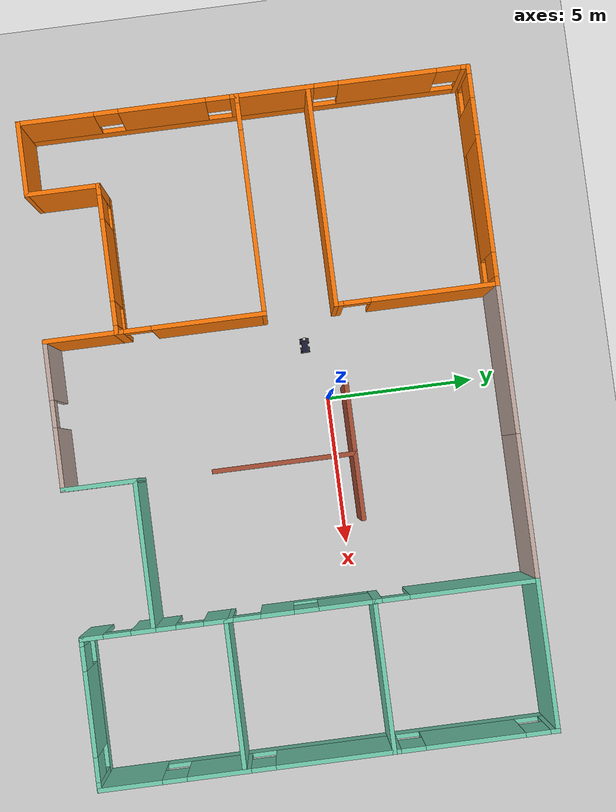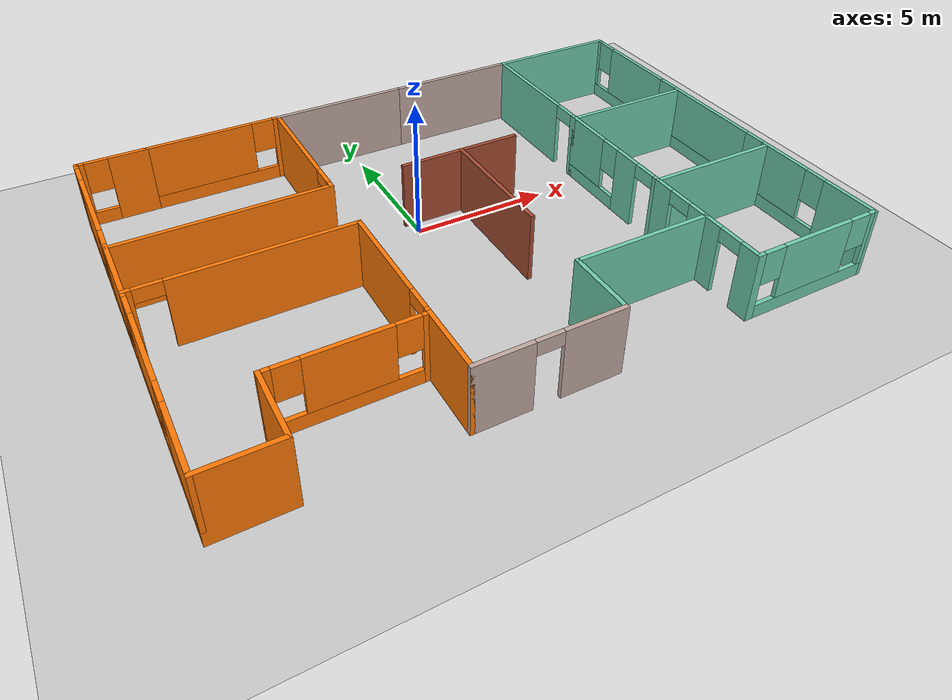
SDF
<sdf version="1.7">
 <world name="default">
  <plugin name="welcome_message" filename="libwelcome_message.so"/>
  <light name="sun" type="directional">
   <pose>0 0 10 0 -0 0</pose>
   <diffuse>0.8 0.8 0.8 1</diffuse>
   <specular>0.2 0.2 0.2 1</specular>
   <attenuation>
    <range>1000</range>
    <constant>0.9</constant>
    <linear>0.01</linear>
    <quadratic>0.001</quadratic>
   </attenuation>
   <direction>-0.5 0.1 -0.9</direction>
   <spot><inner_angle>0</inner_angle><outer_angle>0</outer_angle><falloff>0</falloff></spot>
  </light>
  <model name="ground_plane">
   <static>1</static>
   <link name="link">
    <collision name="collision">
     <geometry><plane><normal>0 0 1</normal><size>100 100</size></plane></geometry>
     <surface>
      <contact><collide_bitmask>65535</collide_bitmask></contact>
      <friction><ode><mu>100</mu><mu2>50</mu2></ode></friction>
     </surface>
    </collision>
    <visual name="visual">
     <cast_shadows>0</cast_shadows>
     <geometry><plane><normal>0 0 1</normal><size>100 100</size></plane></geometry>
     <material>
      <script><uri>file://media/materials/scripts/gazebo.material</uri><name>Gazebo/Grey</name></script>
     </material>
    </visual>
   </link>
  </model>
  <gravity>0 0 -9.8</gravity>
  <magnetic_field>6e-06 2.3e-05 -4.2e-05</magnetic_field>
  <atmosphere type="adiabatic"/>
  <physics type="ode">
   <max_step_size>0.001</max_step_size>
   <real_time_factor>1</real_time_factor>
   <real_time_update_rate>1000</real_time_update_rate>
  </physics>
  <scene><ambient>0.4 0.4 0.4 1</ambient><background>0.7 0.7 0.7 1</background><shadows>1</shadows></scene>
  <spherical_coordinates>
   <surface_model>EARTH_WGS84</surface_model>
   <latitude_deg>0</latitude_deg>
   <longitude_deg>0</longitude_deg>
   <elevation>0</elevation>
   <heading_deg>0</heading_deg>
  </spherical_coordinates>
  <model name="World_1">
   <pose>0.807482 -1.56005 0 0 -0 0</pose>
   <link name="Wall_10">
    <pose>6.025 -3.9 0 0 -0 1.5708</pose>
    <visual name="Wall_10_Visual_0">
     <pose>-0.849577 0 1.25 0 -0 0</pose>
     <geometry><box><size>0.800846 0.15 2.5</size></box></geometry>
     <material>
      <script><uri>file://media/materials/scripts/gazebo.material</uri><name>Gazebo/Grey</name></script>
      <ambient>0.435294 0.796078 0.67451 1</ambient>
     </material>
     <meta><layer>0</layer></meta>
    </visual>
    <collision name="Wall_10_Collision_0">
     <geometry><box><size>0.800846 0.15 2.5</size></box></geometry>
     <pose>-0.849577 0 1.25 0 -0 0</pose>
    </collision>
    <visual name="Wall_10_Visual_1">
     <pose>0.850423 0 1.25 0 -0 0</pose>
     <geometry><box><size>0.799154 0.15 2.5</size></box></geometry>
     <material>
      <script><uri>file://media/materials/scripts/gazebo.material</uri><name>Gazebo/Grey</name></script>
      <ambient>0.435294 0.796078 0.67451 1</ambient>
     </material>
     <meta><layer>0</layer></meta>
    </visual>
    <collision name="Wall_10_Collision_1">
     <geometry><box><size>0.799154 0.15 2.5</size></box></geometry>
     <pose>0.850423 0 1.25 0 -0 0</pose>
    </collision>
    <visual name="Wall_10_Visual_2">
     <pose>0.000846 0 2.25 0 -0 0</pose>
     <geometry><box><size>0.9 0.15 0.5</size></box></geometry>
     <material>
      <script><uri>file://media/materials/scripts/gazebo.material</uri><name>Gazebo/Grey</name></script>
      <ambient>0.435294 0.796078 0.67451 1</ambient>
     </material>
     <meta><layer>0</layer></meta>
    </visual>
    <collision name="Wall_10_Collision_2">
     <geometry><box><size>0.9 0.15 0.5</size></box></geometry>
     <pose>0.000846 0 2.25 0 -0 0</pose>
    </collision>
   </link>
   <link name="Wall_11">
    <collision name="Wall_11_Collision">
     <geometry><box><size>5 0.15 2.5</size></box></geometry>
     <pose>0 0 1.25 0 -0 0</pose>
    </collision>
    <visual name="Wall_11_Visual">
     <pose>0 0 1.25 0 -0 0</pose>
     <geometry><box><size>5 0.15 2.5</size></box></geometry>
     <material>
      <script><uri>file://media/materials/scripts/gazebo.material</uri><name>Gazebo/Grey</name></script>
      <ambient>0.435294 0.796078 0.67451 1</ambient>
     </material>
     <meta><layer>0</layer></meta>
    </visual>
    <pose>8.45 -2.725 0 0 -0 0</pose>
   </link>
   <link name="Wall_13">
    <pose>6.025 -0.3 0 0 -0 1.5708</pose>
    <visual name="Wall_13_Visual_0">
     <pose>-2.34458 0 1.25 0 -0 0</pose>
     <geometry><box><size>0.310846 0.15 2.5</size></box></geometry>
     <material>
      <script><uri>file://media/materials/scripts/gazebo.material</uri><name>Gazebo/Grey</name></script>
      <ambient>0.435294 0.796078 0.67451 1</ambient>
     </material>
     <meta><layer>0</layer></meta>
    </visual>
    <collision name="Wall_13_Collision_0">
     <geometry><box><size>0.310846 0.15 2.5</size></box></geometry>
     <pose>-2.34458 0 1.25 0 -0 0</pose>
    </collision>
    <visual name="Wall_13_Visual_1">
     <pose>-0.744154 0 1.25 0 -0 0</pose>
     <geometry><box><size>1.09 0.15 2.5</size></box></geometry>
     <material>
      <script><uri>file://media/materials/scripts/gazebo.material</uri><name>Gazebo/Grey</name></script>
      <ambient>0.435294 0.796078 0.67451 1</ambient>
     </material>
     <meta><layer>0</layer></meta>
    </visual>
    <collision name="Wall_13_Collision_1">
     <geometry><box><size>1.09 0.15 2.5</size></box></geometry>
     <pose>-0.744154 0 1.25 0 -0 0</pose>
    </collision>
    <visual name="Wall_13_Visual_2">
     <pose>1.15042 0 0.25 0 -0 0</pose>
     <geometry><box><size>2.69915 0.15 0.5</size></box></geometry>
     <material>
      <script><uri>file://media/materials/scripts/gazebo.material</uri><name>Gazebo/Grey</name></script>
      <ambient>0.435294 0.796078 0.67451 1</ambient>
     </material>
     <meta><layer>0</layer></meta>
    </visual>
    <collision name="Wall_13_Collision_2">
     <geometry><box><size>2.69915 0.15 0.5</size></box></geometry>
     <pose>1.15042 0 0.25 0 -0 0</pose>
    </collision>
    <visual name="Wall_13_Visual_3">
     <pose>1.55042 0 1.5 0 -0 0</pose>
     <geometry><box><size>1.89915 0.15 2</size></box></geometry>
     <material>
      <script><uri>file://media/materials/scripts/gazebo.material</uri><name>Gazebo/Grey</name></script>
      <ambient>0.435294 0.796078 0.67451 1</ambient>
     </material>
     <meta><layer>0</layer></meta>
    </visual>
    <collision name="Wall_13_Collision_3">
     <geometry><box><size>1.89915 0.15 2</size></box></geometry>
     <pose>1.55042 0 1.5 0 -0 0</pose>
    </collision>
    <visual name="Wall_13_Visual_4">
     <pose>0.200846 0 1.9 0 -0 0</pose>
     <geometry><box><size>0.8 0.15 1.2</size></box></geometry>
     <material>
      <script><uri>file://media/materials/scripts/gazebo.material</uri><name>Gazebo/Grey</name></script>
      <ambient>0.435294 0.796078 0.67451 1</ambient>
     </material>
     <meta><layer>0</layer></meta>
    </visual>
    <collision name="Wall_13_Collision_4">
     <geometry><box><size>0.8 0.15 1.2</size></box></geometry>
     <pose>0.200846 0 1.9 0 -0 0</pose>
    </collision>
    <visual name="Wall_13_Visual_5">
     <pose>-1.73915 0 2.25 0 -0 0</pose>
     <geometry><box><size>0.9 0.15 0.5</size></box></geometry>
     <material>
      <script><uri>file://media/materials/scripts/gazebo.material</uri><name>Gazebo/Grey</name></script>
      <ambient>0.435294 0.796078 0.67451 1</ambient>
     </material>
     <meta><layer>0</layer></meta>
    </visual>
    <collision name="Wall_13_Collision_5">
     <geometry><box><size>0.9 0.15 0.5</size></box></geometry>
     <pose>-1.73915 0 2.25 0 -0 0</pose>
    </collision>
   </link>
   <link name="Wall_14">
    <collision name="Wall_14_Collision">
     <geometry><box><size>5 0.15 2.5</size></box></geometry>
     <pose>0 0 1.25 0 -0 0</pose>
    </collision>
    <visual name="Wall_14_Visual">
     <pose>0 0 1.25 0 -0 0</pose>
     <geometry><box><size>5 0.15 2.5</size></box></geometry>
     <material>
      <script><uri>file://media/materials/scripts/gazebo.material</uri><name>Gazebo/Grey</name></script>
      <ambient>0.435294 0.796078 0.67451 1</ambient>
     </material>
     <meta><layer>0</layer></meta>
    </visual>
    <pose>8.45 2.125 0 0 -0 0</pose>
   </link>
   <link name="Wall_16">
    <collision name="Wall_16_Collision">
     <geometry><box><size>5 0.15 2.5</size></box></geometry>
     <pose>0 0 1.25 0 -0 0</pose>
    </collision>
    <visual name="Wall_16_Visual">
     <pose>0 0 1.25 0 -0 0</pose>
     <geometry><box><size>5 0.15 2.5</size></box></geometry>
     <material>
      <script><uri>file://media/materials/scripts/gazebo.material</uri><name>Gazebo/Grey</name></script>
      <ambient>0.435294 0.796078 0.67451 1</ambient>
     </material>
     <meta><layer>0</layer></meta>
    </visual>
    <pose>8.45 7.425 0 0 -0 3.14159</pose>
   </link>
   <link name="Wall_17">
    <pose>6.025 4.775 0 0 0 -1.5708</pose>
    <visual name="Wall_17_Visual_0">
     <pose>-0.605423 0 1.25 0 -0 0</pose>
     <geometry><box><size>4.23915 0.15 2.5</size></box></geometry>
     <material>
      <script><uri>file://media/materials/scripts/gazebo.material</uri><name>Gazebo/Grey</name></script>
      <ambient>0.435294 0.796078 0.67451 1</ambient>
     </material>
     <meta><layer>0</layer></meta>
    </visual>
    <collision name="Wall_17_Collision_0">
     <geometry><box><size>4.23915 0.15 2.5</size></box></geometry>
     <pose>-0.605423 0 1.25 0 -0 0</pose>
    </collision>
    <visual name="Wall_17_Visual_1">
     <pose>2.56958 0 1.25 0 -0 0</pose>
     <geometry><box><size>0.310846 0.15 2.5</size></box></geometry>
     <material>
      <script><uri>file://media/materials/scripts/gazebo.material</uri><name>Gazebo/Grey</name></script>
      <ambient>0.435294 0.796078 0.67451 1</ambient>
     </material>
     <meta><layer>0</layer></meta>
    </visual>
    <collision name="Wall_17_Collision_1">
     <geometry><box><size>0.310846 0.15 2.5</size></box></geometry>
     <pose>2.56958 0 1.25 0 -0 0</pose>
    </collision>
    <visual name="Wall_17_Visual_2">
     <pose>1.96415 0 2.25 0 -0 0</pose>
     <geometry><box><size>0.9 0.15 0.5</size></box></geometry>
     <material>
      <script><uri>file://media/materials/scripts/gazebo.material</uri><name>Gazebo/Grey</name></script>
      <ambient>0.435294 0.796078 0.67451 1</ambient>
     </material>
     <meta><layer>0</layer></meta>
    </visual>
    <collision name="Wall_17_Collision_2">
     <geometry><box><size>0.9 0.15 0.5</size></box></geometry>
     <pose>1.96415 0 2.25 0 -0 0</pose>
    </collision>
   </link>
   <link name="Wall_19">
    <collision name="Wall_19_Collision">
     <geometry><box><size>2.5 0.15 2.5</size></box></geometry>
     <pose>0 0 1.25 0 -0 0</pose>
    </collision>
    <visual name="Wall_19_Visual">
     <pose>0 0 1.25 0 -0 0</pose>
     <geometry><box><size>2.5 0.15 2.5</size></box></geometry>
     <material>
      <script><uri>file://media/materials/scripts/gazebo.material</uri><name>Gazebo/Grey</name></script>
      <ambient>0.996078 0.47451 0.0196078 1</ambient>
     </material>
     <meta><layer>0</layer></meta>
    </visual>
    <pose>-3.675 -6.25 0 0 -0 1.5708</pose>
   </link>
   <link name="Wall_2">
    <pose>-1.25 -7.425 0 0 -0 0</pose>
    <visual name="Wall_2_Visual_0">
     <pose>-1.5042 0 1.25 0 -0 0</pose>
     <geometry><box><size>1.99161 0.15 2.5</size></box></geometry>
     <material>
      <script><uri>file://media/materials/scripts/gazebo.material</uri><name>Gazebo/Grey</name></script>
      <ambient>0.760784 0.662745 0.627451 1</ambient>
     </material>
     <meta><layer>0</layer></meta>
    </visual>
    <collision name="Wall_2_Collision_0">
     <geometry><box><size>1.99161 0.15 2.5</size></box></geometry>
     <pose>-1.5042 0 1.25 0 -0 0</pose>
    </collision>
    <visual name="Wall_2_Visual_1">
     <pose>1.4458 0 1.25 0 -0 0</pose>
     <geometry><box><size>2.10839 0.15 2.5</size></box></geometry>
     <material>
      <script><uri>file://media/materials/scripts/gazebo.material</uri><name>Gazebo/Grey</name></script>
      <ambient>0.760784 0.662745 0.627451 1</ambient>
     </material>
     <meta><layer>0</layer></meta>
    </visual>
    <collision name="Wall_2_Collision_1">
     <geometry><box><size>2.10839 0.15 2.5</size></box></geometry>
     <pose>1.4458 0 1.25 0 -0 0</pose>
    </collision>
    <visual name="Wall_2_Visual_2">
     <pose>-0.058393 0 2.25 0 -0 0</pose>
     <geometry><box><size>0.9 0.15 0.5</size></box></geometry>
     <material>
      <script><uri>file://media/materials/scripts/gazebo.material</uri><name>Gazebo/Grey</name></script>
      <ambient>0.760784 0.662745 0.627451 1</ambient>
     </material>
     <meta><layer>0</layer></meta>
    </visual>
    <collision name="Wall_2_Collision_2">
     <geometry><box><size>0.9 0.15 0.5</size></box></geometry>
     <pose>-0.058393 0 2.25 0 -0 0</pose>
    </collision>
   </link>
   <link name="Wall_21">
    <pose>-6.1 -5.075 0 0 -0 3.14159</pose>
    <visual name="Wall_21_Visual_0">
     <pose>-2.34529 0 1.25 0 -0 0</pose>
     <geometry><box><size>0.309417 0.15 2.5</size></box></geometry>
     <material>
      <script><uri>file://media/materials/scripts/gazebo.material</uri><name>Gazebo/Grey</name></script>
      <ambient>0.996078 0.47451 0.0196078 1</ambient>
     </material>
     <meta><layer>0</layer></meta>
    </visual>
    <collision name="Wall_21_Collision_0">
     <geometry><box><size>0.309417 0.15 2.5</size></box></geometry>
     <pose>-2.34529 0 1.25 0 -0 0</pose>
    </collision>
    <visual name="Wall_21_Visual_1">
     <pose>0.154709 0 0.25 0 -0 0</pose>
     <geometry><box><size>4.69058 0.15 0.5</size></box></geometry>
     <material>
      <script><uri>file://media/materials/scripts/gazebo.material</uri><name>Gazebo/Grey</name></script>
      <ambient>0.996078 0.47451 0.0196078 1</ambient>
     </material>
     <meta><layer>0</layer></meta>
    </visual>
    <collision name="Wall_21_Collision_1">
     <geometry><box><size>4.69058 0.15 0.5</size></box></geometry>
     <pose>0.154709 0 0.25 0 -0 0</pose>
    </collision>
    <visual name="Wall_21_Visual_2">
     <pose>-0.040702 0 1.5 0 -0 0</pose>
     <geometry><box><size>2.69976 0.15 2</size></box></geometry>
     <material>
      <script><uri>file://media/materials/scripts/gazebo.material</uri><name>Gazebo/Grey</name></script>
      <ambient>0.996078 0.47451 0.0196078 1</ambient>
     </material>
     <meta><layer>0</layer></meta>
    </visual>
    <collision name="Wall_21_Collision_2">
     <geometry><box><size>2.69976 0.15 2</size></box></geometry>
     <pose>-0.040702 0 1.5 0 -0 0</pose>
    </collision>
    <visual name="Wall_21_Visual_3">
     <pose>2.30459 0 1.5 0 -0 0</pose>
     <geometry><box><size>0.390821 0.15 2</size></box></geometry>
     <material>
      <script><uri>file://media/materials/scripts/gazebo.material</uri><name>Gazebo/Grey</name></script>
      <ambient>0.996078 0.47451 0.0196078 1</ambient>
     </material>
     <meta><layer>0</layer></meta>
    </visual>
    <collision name="Wall_21_Collision_3">
     <geometry><box><size>0.390821 0.15 2</size></box></geometry>
     <pose>2.30459 0 1.5 0 -0 0</pose>
    </collision>
    <visual name="Wall_21_Visual_4">
     <pose>-1.79058 0 1.9 0 -0 0</pose>
     <geometry><box><size>0.8 0.15 1.2</size></box></geometry>
     <material>
      <script><uri>file://media/materials/scripts/gazebo.material</uri><name>Gazebo/Grey</name></script>
      <ambient>0.996078 0.47451 0.0196078 1</ambient>
     </material>
     <meta><layer>0</layer></meta>
    </visual>
    <collision name="Wall_21_Collision_4">
     <geometry><box><size>0.8 0.15 1.2</size></box></geometry>
     <pose>-1.79058 0 1.9 0 -0 0</pose>
    </collision>
    <visual name="Wall_21_Visual_5">
     <pose>1.70918 0 1.9 0 -0 0</pose>
     <geometry><box><size>0.8 0.15 1.2</size></box></geometry>
     <material>
      <script><uri>file://media/materials/scripts/gazebo.material</uri><name>Gazebo/Grey</name></script>
      <ambient>0.996078 0.47451 0.0196078 1</ambient>
     </material>
     <meta><layer>0</layer></meta>
    </visual>
    <collision name="Wall_21_Collision_5">
     <geometry><box><size>0.8 0.15 1.2</size></box></geometry>
     <pose>1.70918 0 1.9 0 -0 0</pose>
    </collision>
   </link>
   <link name="Wall_3">
    <collision name="Wall_3_Collision">
     <geometry><box><size>2.5 0.15 2.5</size></box></geometry>
     <pose>0 0 1.25 0 -0 0</pose>
    </collision>
    <visual name="Wall_3_Visual">
     <pose>0 0 1.25 0 -0 0</pose>
     <geometry><box><size>2.5 0.15 2.5</size></box></geometry>
     <material>
      <script><uri>file://media/materials/scripts/gazebo.material</uri><name>Gazebo/Grey</name></script>
      <ambient>0.435294 0.796078 0.67451 1</ambient>
     </material>
     <meta><layer>0</layer></meta>
    </visual>
    <pose>1.175 -6.25 0 0 -0 1.5708</pose>
   </link>
   <link name="Wall_34">
    <collision name="Wall_34_Collision">
     <geometry><box><size>2.5 0.15 2.5</size></box></geometry>
     <pose>0 0 1.25 0 -0 0</pose>
    </collision>
    <visual name="Wall_34_Visual">
     <pose>0 0 1.25 0 -0 0</pose>
     <geometry><box><size>2.5 0.15 2.5</size></box></geometry>
     <material>
      <script><uri>file://media/materials/scripts/gazebo.material</uri><name>Gazebo/Grey</name></script>
      <ambient>0.996078 0.47451 0.0196078 1</ambient>
     </material>
     <meta><layer>0</layer></meta>
    </visual>
    <pose>-8.525 -6.25 0 0 0 -1.5708</pose>
   </link>
   <link name="Wall_38">
    <collision name="Wall_38_Collision">
     <geometry><box><size>5 0.15 2.5</size></box></geometry>
     <pose>0 0 1.25 0 -0 0</pose>
    </collision>
    <visual name="Wall_38_Visual">
     <pose>0 0 1.25 0 -0 0</pose>
     <geometry><box><size>5 0.15 2.5</size></box></geometry>
     <material>
      <script><uri>file://media/materials/scripts/gazebo.material</uri><name>Gazebo/Grey</name></script>
      <ambient>0.760784 0.662745 0.627451 1</ambient>
     </material>
     <meta><layer>0</layer></meta>
    </visual>
    <pose>3.6 7.425 0 0 -0 3.14159</pose>
   </link>
   <link name="Wall_39">
    <collision name="Wall_39_Collision">
     <geometry><box><size>5 0.15 2.5</size></box></geometry>
     <pose>0 0 1.25 0 -0 0</pose>
    </collision>
    <visual name="Wall_39_Visual">
     <pose>0 0 1.25 0 -0 0</pose>
     <geometry><box><size>5 0.15 2.5</size></box></geometry>
     <material>
      <script><uri>file://media/materials/scripts/gazebo.material</uri><name>Gazebo/Grey</name></script>
      <ambient>0.760784 0.662745 0.627451 1</ambient>
     </material>
     <meta><layer>0</layer></meta>
    </visual>
    <pose>-1.25 7.425 0 0 -0 3.14159</pose>
   </link>
   <link name="Wall_4">
    <collision name="Wall_4_Collision">
     <geometry><box><size>5 0.15 2.5</size></box></geometry>
     <pose>0 0 1.25 0 -0 0</pose>
    </collision>
    <visual name="Wall_4_Visual">
     <pose>0 0 1.25 0 -0 0</pose>
     <geometry><box><size>5 0.15 2.5</size></box></geometry>
     <material>
      <script><uri>file://media/materials/scripts/gazebo.material</uri><name>Gazebo/Grey</name></script>
      <ambient>0.435294 0.796078 0.67451 1</ambient>
     </material>
     <meta><layer>0</layer></meta>
    </visual>
    <pose>3.6 -5.075 0 0 -0 0</pose>
   </link>
   <link name="Wall_40">
    <pose>-6.1 7.425 0 0 -0 3.14159</pose>
    <visual name="Wall_40_Visual_0">
     <pose>-2.3458 0 1.25 0 -0 0</pose>
     <geometry><box><size>0.308393 0.15 2.5</size></box></geometry>
     <material>
      <script><uri>file://media/materials/scripts/gazebo.material</uri><name>Gazebo/Grey</name></script>
      <ambient>0.996078 0.47451 0.0196078 1</ambient>
     </material>
     <meta><layer>0</layer></meta>
    </visual>
    <collision name="Wall_40_Collision_0">
     <geometry><box><size>0.308393 0.15 2.5</size></box></geometry>
     <pose>-2.3458 0 1.25 0 -0 0</pose>
    </collision>
    <visual name="Wall_40_Visual_1">
     <pose>0.154197 0 0.25 0 -0 0</pose>
     <geometry><box><size>4.69161 0.15 0.5</size></box></geometry>
     <material>
      <script><uri>file://media/materials/scripts/gazebo.material</uri><name>Gazebo/Grey</name></script>
      <ambient>0.996078 0.47451 0.0196078 1</ambient>
     </material>
     <meta><layer>0</layer></meta>
    </visual>
    <collision name="Wall_40_Collision_1">
     <geometry><box><size>4.69161 0.15 0.5</size></box></geometry>
     <pose>0.154197 0 0.25 0 -0 0</pose>
    </collision>
    <visual name="Wall_40_Visual_2">
     <pose>0.554197 0 1.5 0 -0 0</pose>
     <geometry><box><size>3.89161 0.15 2</size></box></geometry>
     <material>
      <script><uri>file://media/materials/scripts/gazebo.material</uri><name>Gazebo/Grey</name></script>
      <ambient>0.996078 0.47451 0.0196078 1</ambient>
     </material>
     <meta><layer>0</layer></meta>
    </visual>
    <collision name="Wall_40_Collision_2">
     <geometry><box><size>3.89161 0.15 2</size></box></geometry>
     <pose>0.554197 0 1.5 0 -0 0</pose>
    </collision>
    <visual name="Wall_40_Visual_3">
     <pose>-1.79161 0 1.9 0 -0 0</pose>
     <geometry><box><size>0.8 0.15 1.2</size></box></geometry>
     <material>
      <script><uri>file://media/materials/scripts/gazebo.material</uri><name>Gazebo/Grey</name></script>
      <ambient>0.996078 0.47451 0.0196078 1</ambient>
     </material>
     <meta><layer>0</layer></meta>
    </visual>
    <collision name="Wall_40_Collision_3">
     <geometry><box><size>0.8 0.15 1.2</size></box></geometry>
     <pose>-1.79161 0 1.9 0 -0 0</pose>
    </collision>
   </link>
   <link name="Wall_43">
    <collision name="Wall_43_Collision">
     <geometry><box><size>2.5 0.15 2.5</size></box></geometry>
     <pose>0 0 1.25 0 -0 0</pose>
    </collision>
    <visual name="Wall_43_Visual">
     <pose>0 0 1.25 0 -0 0</pose>
     <geometry><box><size>2.5 0.15 2.5</size></box></geometry>
     <material>
      <script><uri>file://media/materials/scripts/gazebo.material</uri><name>Gazebo/Grey</name></script>
      <ambient>0.996078 0.47451 0.0196078 1</ambient>
     </material>
     <meta><layer>0</layer></meta>
    </visual>
    <pose>-9.7 -7.425 0 0 -0 3.14159</pose>
   </link>
   <link name="Wall_45">
    <pose>-9.7 7.425 0 0 -0 3.14159</pose>
    <visual name="Wall_45_Visual_0">
     <pose>-0.560804 0 1.25 0 -0 0</pose>
     <geometry><box><size>1.37839 0.15 2.5</size></box></geometry>
     <material>
      <script><uri>file://media/materials/scripts/gazebo.material</uri><name>Gazebo/Grey</name></script>
      <ambient>0.996078 0.47451 0.0196078 1</ambient>
     </material>
     <meta><layer>0</layer></meta>
    </visual>
    <collision name="Wall_45_Collision_0">
     <geometry><box><size>1.37839 0.15 2.5</size></box></geometry>
     <pose>-0.560804 0 1.25 0 -0 0</pose>
    </collision>
    <visual name="Wall_45_Visual_1">
     <pose>0.689196 0 0.25 0 -0 0</pose>
     <geometry><box><size>1.12161 0.15 0.5</size></box></geometry>
     <material>
      <script><uri>file://media/materials/scripts/gazebo.material</uri><name>Gazebo/Grey</name></script>
      <ambient>0.996078 0.47451 0.0196078 1</ambient>
     </material>
     <meta><layer>0</layer></meta>
    </visual>
    <collision name="Wall_45_Collision_1">
     <geometry><box><size>1.12161 0.15 0.5</size></box></geometry>
     <pose>0.689196 0 0.25 0 -0 0</pose>
    </collision>
    <visual name="Wall_45_Visual_2">
     <pose>1.0892 0 1.5 0 -0 0</pose>
     <geometry><box><size>0.321607 0.15 2</size></box></geometry>
     <material>
      <script><uri>file://media/materials/scripts/gazebo.material</uri><name>Gazebo/Grey</name></script>
      <ambient>0.996078 0.47451 0.0196078 1</ambient>
     </material>
     <meta><layer>0</layer></meta>
    </visual>
    <collision name="Wall_45_Collision_2">
     <geometry><box><size>0.321607 0.15 2</size></box></geometry>
     <pose>1.0892 0 1.5 0 -0 0</pose>
    </collision>
    <visual name="Wall_45_Visual_3">
     <pose>0.528393 0 1.9 0 -0 0</pose>
     <geometry><box><size>0.8 0.15 1.2</size></box></geometry>
     <material>
      <script><uri>file://media/materials/scripts/gazebo.material</uri><name>Gazebo/Grey</name></script>
      <ambient>0.996078 0.47451 0.0196078 1</ambient>
     </material>
     <meta><layer>0</layer></meta>
    </visual>
    <collision name="Wall_45_Collision_3">
     <geometry><box><size>0.8 0.15 1.2</size></box></geometry>
     <pose>0.528393 0 1.9 0 -0 0</pose>
    </collision>
   </link>
   <link name="Wall_46">
    <pose>-10.875 0 0 0 0 -1.5708</pose>
    <visual name="Wall_46_Visual_0">
     <pose>-7.34042 0 1.25 0 -0 0</pose>
     <geometry><box><size>0.319154 0.15 2.5</size></box></geometry>
     <material>
      <script><uri>file://media/materials/scripts/gazebo.material</uri><name>Gazebo/Grey</name></script>
      <ambient>0.996078 0.47451 0.0196078 1</ambient>
     </material>
     <meta><layer>0</layer></meta>
    </visual>
    <collision name="Wall_46_Collision_0">
     <geometry><box><size>0.319154 0.15 2.5</size></box></geometry>
     <pose>-7.34042 0 1.25 0 -0 0</pose>
    </collision>
    <visual name="Wall_46_Visual_1">
     <pose>0.159577 0 0.25 0 -0 0</pose>
     <geometry><box><size>14.6808 0.15 0.5</size></box></geometry>
     <material>
      <script><uri>file://media/materials/scripts/gazebo.material</uri><name>Gazebo/Grey</name></script>
      <ambient>0.996078 0.47451 0.0196078 1</ambient>
     </material>
     <meta><layer>0</layer></meta>
    </visual>
    <collision name="Wall_46_Collision_1">
     <geometry><box><size>14.6808 0.15 0.5</size></box></geometry>
     <pose>0.159577 0 0.25 0 -0 0</pose>
    </collision>
    <visual name="Wall_46_Visual_2">
     <pose>-4.75585 0 1.5 0 -0 0</pose>
     <geometry><box><size>3.25 0.15 2</size></box></geometry>
     <material>
      <script><uri>file://media/materials/scripts/gazebo.material</uri><name>Gazebo/Grey</name></script>
      <ambient>0.996078 0.47451 0.0196078 1</ambient>
     </material>
     <meta><layer>0</layer></meta>
    </visual>
    <collision name="Wall_46_Collision_2">
     <geometry><box><size>3.25 0.15 2</size></box></geometry>
     <pose>-4.75585 0 1.5 0 -0 0</pose>
    </collision>
    <visual name="Wall_46_Visual_3">
     <pose>-0.940846 0 1.5 0 -0 0</pose>
     <geometry><box><size>2.78 0.15 2</size></box></geometry>
     <material>
      <script><uri>file://media/materials/scripts/gazebo.material</uri><name>Gazebo/Grey</name></script>
      <ambient>0.996078 0.47451 0.0196078 1</ambient>
     </material>
     <meta><layer>0</layer></meta>
    </visual>
    <collision name="Wall_46_Collision_3">
     <geometry><box><size>2.78 0.15 2</size></box></geometry>
     <pose>-0.940846 0 1.5 0 -0 0</pose>
    </collision>
    <visual name="Wall_46_Visual_4">
     <pose>2.68915 0 1.5 0 -0 0</pose>
     <geometry><box><size>2.88 0.15 2</size></box></geometry>
     <material>
      <script><uri>file://media/materials/scripts/gazebo.material</uri><name>Gazebo/Grey</name></script>
      <ambient>0.996078 0.47451 0.0196078 1</ambient>
     </material>
     <meta><layer>0</layer></meta>
    </visual>
    <collision name="Wall_46_Collision_4">
     <geometry><box><size>2.88 0.15 2</size></box></geometry>
     <pose>2.68915 0 1.5 0 -0 0</pose>
    </collision>
    <visual name="Wall_46_Visual_5">
     <pose>6.21458 0 1.5 0 -0 0</pose>
     <geometry><box><size>2.57085 0.15 2</size></box></geometry>
     <material>
      <script><uri>file://media/materials/scripts/gazebo.material</uri><name>Gazebo/Grey</name></script>
      <ambient>0.996078 0.47451 0.0196078 1</ambient>
     </material>
     <meta><layer>0</layer></meta>
    </visual>
    <collision name="Wall_46_Collision_5">
     <geometry><box><size>2.57085 0.15 2</size></box></geometry>
     <pose>6.21458 0 1.5 0 -0 0</pose>
    </collision>
    <visual name="Wall_46_Visual_6">
     <pose>-6.78085 0 1.9 0 -0 0</pose>
     <geometry><box><size>0.8 0.15 1.2</size></box></geometry>
     <material>
      <script><uri>file://media/materials/scripts/gazebo.material</uri><name>Gazebo/Grey</name></script>
      <ambient>0.996078 0.47451 0.0196078 1</ambient>
     </material>
     <meta><layer>0</layer></meta>
    </visual>
    <collision name="Wall_46_Collision_6">
     <geometry><box><size>0.8 0.15 1.2</size></box></geometry>
     <pose>-6.78085 0 1.9 0 -0 0</pose>
    </collision>
    <visual name="Wall_46_Visual_7">
     <pose>-2.73085 0 1.9 0 -0 0</pose>
     <geometry><box><size>0.8 0.15 1.2</size></box></geometry>
     <material>
      <script><uri>file://media/materials/scripts/gazebo.material</uri><name>Gazebo/Grey</name></script>
      <ambient>0.996078 0.47451 0.0196078 1</ambient>
     </material>
     <meta><layer>0</layer></meta>
    </visual>
    <collision name="Wall_46_Collision_7">
     <geometry><box><size>0.8 0.15 1.2</size></box></geometry>
     <pose>-2.73085 0 1.9 0 -0 0</pose>
    </collision>
    <visual name="Wall_46_Visual_8">
     <pose>0.849154 0 1.9 0 -0 0</pose>
     <geometry><box><size>0.8 0.15 1.2</size></box></geometry>
     <material>
      <script><uri>file://media/materials/scripts/gazebo.material</uri><name>Gazebo/Grey</name></script>
      <ambient>0.996078 0.47451 0.0196078 1</ambient>
     </material>
     <meta><layer>0</layer></meta>
    </visual>
    <collision name="Wall_46_Collision_8">
     <geometry><box><size>0.8 0.15 1.2</size></box></geometry>
     <pose>0.849154 0 1.9 0 -0 0</pose>
    </collision>
    <visual name="Wall_46_Visual_9">
     <pose>4.52915 0 1.9 0 -0 0</pose>
     <geometry><box><size>0.8 0.15 1.2</size></box></geometry>
     <material>
      <script><uri>file://media/materials/scripts/gazebo.material</uri><name>Gazebo/Grey</name></script>
      <ambient>0.996078 0.47451 0.0196078 1</ambient>
     </material>
     <meta><layer>0</layer></meta>
    </visual>
    <collision name="Wall_46_Collision_9">
     <geometry><box><size>0.8 0.15 1.2</size></box></geometry>
     <pose>4.52915 0 1.9 0 -0 0</pose>
    </collision>
   </link>
   <link name="Wall_48">
    <pose>-3.675 -2.65 0 0 -0 1.5708</pose>
    <visual name="Wall_48_Visual_0">
     <pose>-2.34458 0 1.25 0 -0 0</pose>
     <geometry><box><size>0.310846 0.15 2.5</size></box></geometry>
     <material>
      <script><uri>file://media/materials/scripts/gazebo.material</uri><name>Gazebo/Grey</name></script>
      <ambient>0.996078 0.47451 0.0196078 1</ambient>
     </material>
     <meta><layer>0</layer></meta>
    </visual>
    <collision name="Wall_48_Collision_0">
     <geometry><box><size>0.310846 0.15 2.5</size></box></geometry>
     <pose>-2.34458 0 1.25 0 -0 0</pose>
    </collision>
    <visual name="Wall_48_Visual_1">
     <pose>0.605423 0 1.25 0 -0 0</pose>
     <geometry><box><size>3.78915 0.15 2.5</size></box></geometry>
     <material>
      <script><uri>file://media/materials/scripts/gazebo.material</uri><name>Gazebo/Grey</name></script>
      <ambient>0.996078 0.47451 0.0196078 1</ambient>
     </material>
     <meta><layer>0</layer></meta>
    </visual>
    <collision name="Wall_48_Collision_1">
     <geometry><box><size>3.78915 0.15 2.5</size></box></geometry>
     <pose>0.605423 0 1.25 0 -0 0</pose>
    </collision>
    <visual name="Wall_48_Visual_2">
     <pose>-1.73915 0 2.25 0 -0 0</pose>
     <geometry><box><size>0.9 0.15 0.5</size></box></geometry>
     <material>
      <script><uri>file://media/materials/scripts/gazebo.material</uri><name>Gazebo/Grey</name></script>
      <ambient>0.996078 0.47451 0.0196078 1</ambient>
     </material>
     <meta><layer>0</layer></meta>
    </visual>
    <collision name="Wall_48_Collision_2">
     <geometry><box><size>0.9 0.15 0.5</size></box></geometry>
     <pose>-1.73915 0 2.25 0 -0 0</pose>
    </collision>
   </link>
   <link name="Wall_5">
    <pose>6.025 -6.25 0 0 0 -1.5708</pose>
    <visual name="Wall_5_Visual_0">
     <pose>-0.845423 0 1.25 0 -0 0</pose>
     <geometry><box><size>0.809154 0.15 2.5</size></box></geometry>
     <material>
      <script><uri>file://media/materials/scripts/gazebo.material</uri><name>Gazebo/Grey</name></script>
      <ambient>0.435294 0.796078 0.67451 1</ambient>
     </material>
     <meta><layer>0</layer></meta>
    </visual>
    <collision name="Wall_5_Collision_0">
     <geometry><box><size>0.809154 0.15 2.5</size></box></geometry>
     <pose>-0.845423 0 1.25 0 -0 0</pose>
    </collision>
    <visual name="Wall_5_Visual_1">
     <pose>0.854577 0 1.25 0 -0 0</pose>
     <geometry><box><size>0.790846 0.15 2.5</size></box></geometry>
     <material>
      <script><uri>file://media/materials/scripts/gazebo.material</uri><name>Gazebo/Grey</name></script>
      <ambient>0.435294 0.796078 0.67451 1</ambient>
     </material>
     <meta><layer>0</layer></meta>
    </visual>
    <collision name="Wall_5_Collision_1">
     <geometry><box><size>0.790846 0.15 2.5</size></box></geometry>
     <pose>0.854577 0 1.25 0 -0 0</pose>
    </collision>
    <visual name="Wall_5_Visual_2">
     <pose>0.009154 0 2.25 0 -0 0</pose>
     <geometry><box><size>0.9 0.15 0.5</size></box></geometry>
     <material>
      <script><uri>file://media/materials/scripts/gazebo.material</uri><name>Gazebo/Grey</name></script>
      <ambient>0.435294 0.796078 0.67451 1</ambient>
     </material>
     <meta><layer>0</layer></meta>
    </visual>
    <collision name="Wall_5_Collision_2">
     <geometry><box><size>0.9 0.15 0.5</size></box></geometry>
     <pose>0.009154 0 2.25 0 -0 0</pose>
    </collision>
   </link>
   <link name="Wall_50">
    <pose>-7.275 -0.225 0 0 -0 3.14159</pose>
    <visual name="Wall_50_Visual_0">
     <pose>-0.605803 0 1.25 0 -0 0</pose>
     <geometry><box><size>6.13839 0.15 2.5</size></box></geometry>
     <material>
      <script><uri>file://media/materials/scripts/gazebo.material</uri><name>Gazebo/Grey</name></script>
      <ambient>0.996078 0.47451 0.0196078 1</ambient>
     </material>
     <meta><layer>0</layer></meta>
    </visual>
    <collision name="Wall_50_Collision_0">
     <geometry><box><size>6.13839 0.15 2.5</size></box></geometry>
     <pose>-0.605803 0 1.25 0 -0 0</pose>
    </collision>
    <visual name="Wall_50_Visual_1">
     <pose>3.5192 0 1.25 0 -0 0</pose>
     <geometry><box><size>0.311607 0.15 2.5</size></box></geometry>
     <material>
      <script><uri>file://media/materials/scripts/gazebo.material</uri><name>Gazebo/Grey</name></script>
      <ambient>0.996078 0.47451 0.0196078 1</ambient>
     </material>
     <meta><layer>0</layer></meta>
    </visual>
    <collision name="Wall_50_Collision_1">
     <geometry><box><size>0.311607 0.15 2.5</size></box></geometry>
     <pose>3.5192 0 1.25 0 -0 0</pose>
    </collision>
    <visual name="Wall_50_Visual_2">
     <pose>2.91339 0 2.25 0 -0 0</pose>
     <geometry><box><size>0.9 0.15 0.5</size></box></geometry>
     <material>
      <script><uri>file://media/materials/scripts/gazebo.material</uri><name>Gazebo/Grey</name></script>
      <ambient>0.996078 0.47451 0.0196078 1</ambient>
     </material>
     <meta><layer>0</layer></meta>
    </visual>
    <collision name="Wall_50_Collision_2">
     <geometry><box><size>0.9 0.15 0.5</size></box></geometry>
     <pose>2.91339 0 2.25 0 -0 0</pose>
    </collision>
   </link>
   <link name="Wall_53">
    <pose>-3.675 4.775 0 0 0 -1.5708</pose>
    <visual name="Wall_53_Visual_0">
     <pose>-0.610423 0 1.25 0 -0 0</pose>
     <geometry><box><size>4.22915 0.15 2.5</size></box></geometry>
     <material>
      <script><uri>file://media/materials/scripts/gazebo.material</uri><name>Gazebo/Grey</name></script>
      <ambient>0.996078 0.47451 0.0196078 1</ambient>
     </material>
     <meta><layer>0</layer></meta>
    </visual>
    <collision name="Wall_53_Collision_0">
     <geometry><box><size>4.22915 0.15 2.5</size></box></geometry>
     <pose>-0.610423 0 1.25 0 -0 0</pose>
    </collision>
    <visual name="Wall_53_Visual_1">
     <pose>2.56458 0 1.25 0 -0 0</pose>
     <geometry><box><size>0.320846 0.15 2.5</size></box></geometry>
     <material>
      <script><uri>file://media/materials/scripts/gazebo.material</uri><name>Gazebo/Grey</name></script>
      <ambient>0.996078 0.47451 0.0196078 1</ambient>
     </material>
     <meta><layer>0</layer></meta>
    </visual>
    <collision name="Wall_53_Collision_1">
     <geometry><box><size>0.320846 0.15 2.5</size></box></geometry>
     <pose>2.56458 0 1.25 0 -0 0</pose>
    </collision>
    <visual name="Wall_53_Visual_2">
     <pose>1.95415 0 2.25 0 -0 0</pose>
     <geometry><box><size>0.9 0.15 0.5</size></box></geometry>
     <material>
      <script><uri>file://media/materials/scripts/gazebo.material</uri><name>Gazebo/Grey</name></script>
      <ambient>0.996078 0.47451 0.0196078 1</ambient>
     </material>
     <meta><layer>0</layer></meta>
    </visual>
    <collision name="Wall_53_Collision_2">
     <geometry><box><size>0.9 0.15 0.5</size></box></geometry>
     <pose>1.95415 0 2.25 0 -0 0</pose>
    </collision>
   </link>
   <link name="Wall_55">
    <collision name="Wall_55_Collision">
     <geometry><box><size>7.35 0.15 2.5</size></box></geometry>
     <pose>0 0 1.25 0 -0 0</pose>
    </collision>
    <visual name="Wall_55_Visual">
     <pose>0 0 1.25 0 -0 0</pose>
     <geometry><box><size>7.35 0.15 2.5</size></box></geometry>
     <material>
      <script><uri>file://media/materials/scripts/gazebo.material</uri><name>Gazebo/Grey</name></script>
      <ambient>0.996078 0.47451 0.0196078 1</ambient>
     </material>
     <meta><layer>0</layer></meta>
    </visual>
    <pose>-7.275 2.125 0 0 -0 3.14159</pose>
   </link>
   <link name="Wall_57">
    <collision name="Wall_57_Collision">
     <geometry><box><size>4.5 0.15 2.5</size></box></geometry>
     <pose>0 0 1.25 0 -0 0</pose>
    </collision>
    <visual name="Wall_57_Visual">
     <pose>0 0 1.25 0 -0 0</pose>
     <geometry><box><size>4.5 0.15 2.5</size></box></geometry>
     <material>
      <script><uri>file://media/materials/scripts/gazebo.material</uri><name>Gazebo/Bricks</name></script>
      <ambient>1 1 1 1</ambient>
     </material>
     <meta><layer>0</layer></meta>
    </visual>
    <pose>1.15173 2.11728 0 0 -0 0</pose>
   </link>
   <link name="Wall_59">
    <collision name="Wall_59_Collision">
     <geometry><box><size>4.75 0.15 2.5</size></box></geometry>
     <pose>0 0 1.25 0 -0 0</pose>
    </collision>
    <visual name="Wall_59_Visual">
     <pose>0 0 1.25 0 -0 0</pose>
     <geometry><box><size>4.75 0.15 2.5</size></box></geometry>
     <material>
      <script><uri>file://media/materials/scripts/gazebo.material</uri><name>Gazebo/Bricks</name></script>
      <ambient>1 1 1 1</ambient>
     </material>
     <meta><layer>0</layer></meta>
    </visual>
    <pose>1.20673 -0.182724 0 0 0 -1.5708</pose>
   </link>
   <link name="Wall_6">
    <pose>8.45 -7.425 0 0 -0 0</pose>
    <visual name="Wall_6_Visual_0">
     <pose>-2.3492 0 1.25 0 -0 0</pose>
     <geometry><box><size>0.301607 0.15 2.5</size></box></geometry>
     <material>
      <script><uri>file://media/materials/scripts/gazebo.material</uri><name>Gazebo/Grey</name></script>
      <ambient>0.435294 0.796078 0.67451 1</ambient>
     </material>
     <meta><layer>0</layer></meta>
    </visual>
    <collision name="Wall_6_Collision_0">
     <geometry><box><size>0.301607 0.15 2.5</size></box></geometry>
     <pose>-2.3492 0 1.25 0 -0 0</pose>
    </collision>
    <visual name="Wall_6_Visual_1">
     <pose>0.150803 0 0.25 0 -0 0</pose>
     <geometry><box><size>4.69839 0.15 0.5</size></box></geometry>
     <material>
      <script><uri>file://media/materials/scripts/gazebo.material</uri><name>Gazebo/Grey</name></script>
      <ambient>0.435294 0.796078 0.67451 1</ambient>
     </material>
     <meta><layer>0</layer></meta>
    </visual>
    <collision name="Wall_6_Collision_1">
     <geometry><box><size>4.69839 0.15 0.5</size></box></geometry>
     <pose>0.150803 0 0.25 0 -0 0</pose>
    </collision>
    <visual name="Wall_6_Visual_2">
     <pose>-0.013393 0 1.5 0 -0 0</pose>
     <geometry><box><size>2.77 0.15 2</size></box></geometry>
     <material>
      <script><uri>file://media/materials/scripts/gazebo.material</uri><name>Gazebo/Grey</name></script>
      <ambient>0.435294 0.796078 0.67451 1</ambient>
     </material>
     <meta><layer>0</layer></meta>
    </visual>
    <collision name="Wall_6_Collision_2">
     <geometry><box><size>2.77 0.15 2</size></box></geometry>
     <pose>-0.013393 0 1.5 0 -0 0</pose>
    </collision>
    <visual name="Wall_6_Visual_3">
     <pose>2.3358 0 1.5 0 -0 0</pose>
     <geometry><box><size>0.328393 0.15 2</size></box></geometry>
     <material>
      <script><uri>file://media/materials/scripts/gazebo.material</uri><name>Gazebo/Grey</name></script>
      <ambient>0.435294 0.796078 0.67451 1</ambient>
     </material>
     <meta><layer>0</layer></meta>
    </visual>
    <collision name="Wall_6_Collision_3">
     <geometry><box><size>0.328393 0.15 2</size></box></geometry>
     <pose>2.3358 0 1.5 0 -0 0</pose>
    </collision>
    <visual name="Wall_6_Visual_4">
     <pose>-1.79839 0 1.9 0 -0 0</pose>
     <geometry><box><size>0.8 0.15 1.2</size></box></geometry>
     <material>
      <script><uri>file://media/materials/scripts/gazebo.material</uri><name>Gazebo/Grey</name></script>
      <ambient>0.435294 0.796078 0.67451 1</ambient>
     </material>
     <meta><layer>0</layer></meta>
    </visual>
    <collision name="Wall_6_Collision_4">
     <geometry><box><size>0.8 0.15 1.2</size></box></geometry>
     <pose>-1.79839 0 1.9 0 -0 0</pose>
    </collision>
    <visual name="Wall_6_Visual_5">
     <pose>1.77161 0 1.9 0 -0 0</pose>
     <geometry><box><size>0.8 0.15 1.2</size></box></geometry>
     <material>
      <script><uri>file://media/materials/scripts/gazebo.material</uri><name>Gazebo/Grey</name></script>
      <ambient>0.435294 0.796078 0.67451 1</ambient>
     </material>
     <meta><layer>0</layer></meta>
    </visual>
    <collision name="Wall_6_Collision_5">
     <geometry><box><size>0.8 0.15 1.2</size></box></geometry>
     <pose>1.77161 0 1.9 0 -0 0</pose>
    </collision>
   </link>
   <link name="Wall_8">
    <pose>10.875 0 0 0 -0 1.5708</pose>
    <visual name="Wall_8_Visual_0">
     <pose>-6.44458 0 1.25 0 -0 0</pose>
     <geometry><box><size>2.11085 0.15 2.5</size></box></geometry>
     <material>
      <script><uri>file://media/materials/scripts/gazebo.material</uri><name>Gazebo/Grey</name></script>
      <ambient>0.435294 0.796078 0.67451 1</ambient>
     </material>
     <meta><layer>0</layer></meta>
    </visual>
    <collision name="Wall_8_Collision_0">
     <geometry><box><size>2.11085 0.15 2.5</size></box></geometry>
     <pose>-6.44458 0 1.25 0 -0 0</pose>
    </collision>
    <visual name="Wall_8_Visual_1">
     <pose>1.05542 0 0.25 0 -0 0</pose>
     <geometry><box><size>12.8892 0.15 0.5</size></box></geometry>
     <material>
      <script><uri>file://media/materials/scripts/gazebo.material</uri><name>Gazebo/Grey</name></script>
      <ambient>0.435294 0.796078 0.67451 1</ambient>
     </material>
     <meta><layer>0</layer></meta>
    </visual>
    <collision name="Wall_8_Collision_1">
     <geometry><box><size>12.8892 0.15 0.5</size></box></geometry>
     <pose>1.05542 0 0.25 0 -0 0</pose>
    </collision>
    <visual name="Wall_8_Visual_2">
     <pose>-3.54915 0 1.5 0 -0 0</pose>
     <geometry><box><size>2.08 0.15 2</size></box></geometry>
     <material>
      <script><uri>file://media/materials/scripts/gazebo.material</uri><name>Gazebo/Grey</name></script>
      <ambient>0.435294 0.796078 0.67451 1</ambient>
     </material>
     <meta><layer>0</layer></meta>
    </visual>
    <collision name="Wall_8_Collision_2">
     <geometry><box><size>2.08 0.15 2</size></box></geometry>
     <pose>-3.54915 0 1.5 0 -0 0</pose>
    </collision>
    <visual name="Wall_8_Visual_3">
     <pose>0.315846 0 1.5 0 -0 0</pose>
     <geometry><box><size>4.05 0.15 2</size></box></geometry>
     <material>
      <script><uri>file://media/materials/scripts/gazebo.material</uri><name>Gazebo/Grey</name></script>
      <ambient>0.435294 0.796078 0.67451 1</ambient>
     </material>
     <meta><layer>0</layer></meta>
    </visual>
    <collision name="Wall_8_Collision_3">
     <geometry><box><size>4.05 0.15 2</size></box></geometry>
     <pose>0.315846 0 1.5 0 -0 0</pose>
    </collision>
    <visual name="Wall_8_Visual_4">
     <pose>4.76085 0 1.5 0 -0 0</pose>
     <geometry><box><size>3.24 0.15 2</size></box></geometry>
     <material>
      <script><uri>file://media/materials/scripts/gazebo.material</uri><name>Gazebo/Grey</name></script>
      <ambient>0.435294 0.796078 0.67451 1</ambient>
     </material>
     <meta><layer>0</layer></meta>
    </visual>
    <collision name="Wall_8_Collision_4">
     <geometry><box><size>3.24 0.15 2</size></box></geometry>
     <pose>4.76085 0 1.5 0 -0 0</pose>
    </collision>
    <visual name="Wall_8_Visual_5">
     <pose>7.34042 0 1.5 0 -0 0</pose>
     <geometry><box><size>0.319154 0.15 2</size></box></geometry>
     <material>
      <script><uri>file://media/materials/scripts/gazebo.material</uri><name>Gazebo/Grey</name></script>
      <ambient>0.435294 0.796078 0.67451 1</ambient>
     </material>
     <meta><layer>0</layer></meta>
    </visual>
    <collision name="Wall_8_Collision_5">
     <geometry><box><size>0.319154 0.15 2</size></box></geometry>
     <pose>7.34042 0 1.5 0 -0 0</pose>
    </collision>
    <visual name="Wall_8_Visual_6">
     <pose>-4.98915 0 1.9 0 -0 0</pose>
     <geometry><box><size>0.8 0.15 1.2</size></box></geometry>
     <material>
      <script><uri>file://media/materials/scripts/gazebo.material</uri><name>Gazebo/Grey</name></script>
      <ambient>0.435294 0.796078 0.67451 1</ambient>
     </material>
     <meta><layer>0</layer></meta>
    </visual>
    <collision name="Wall_8_Collision_6">
     <geometry><box><size>0.8 0.15 1.2</size></box></geometry>
     <pose>-4.98915 0 1.9 0 -0 0</pose>
    </collision>
    <visual name="Wall_8_Visual_7">
     <pose>-2.10915 0 1.9 0 -0 0</pose>
     <geometry><box><size>0.8 0.15 1.2</size></box></geometry>
     <material>
      <script><uri>file://media/materials/scripts/gazebo.material</uri><name>Gazebo/Grey</name></script>
      <ambient>0.435294 0.796078 0.67451 1</ambient>
     </material>
     <meta><layer>0</layer></meta>
    </visual>
    <collision name="Wall_8_Collision_7">
     <geometry><box><size>0.8 0.15 1.2</size></box></geometry>
     <pose>-2.10915 0 1.9 0 -0 0</pose>
    </collision>
    <visual name="Wall_8_Visual_8">
     <pose>2.74085 0 1.9 0 -0 0</pose>
     <geometry><box><size>0.8 0.15 1.2</size></box></geometry>
     <material>
      <script><uri>file://media/materials/scripts/gazebo.material</uri><name>Gazebo/Grey</name></script>
      <ambient>0.435294 0.796078 0.67451 1</ambient>
     </material>
     <meta><layer>0</layer></meta>
    </visual>
    <collision name="Wall_8_Collision_8">
     <geometry><box><size>0.8 0.15 1.2</size></box></geometry>
     <pose>2.74085 0 1.9 0 -0 0</pose>
    </collision>
    <visual name="Wall_8_Visual_9">
     <pose>6.78085 0 1.9 0 -0 0</pose>
     <geometry><box><size>0.8 0.15 1.2</size></box></geometry>
     <material>
      <script><uri>file://media/materials/scripts/gazebo.material</uri><name>Gazebo/Grey</name></script>
      <ambient>0.435294 0.796078 0.67451 1</ambient>
     </material>
     <meta><layer>0</layer></meta>
    </visual>
    <collision name="Wall_8_Collision_9">
     <geometry><box><size>0.8 0.15 1.2</size></box></geometry>
     <pose>6.78085 0 1.9 0 -0 0</pose>
    </collision>
   </link>
   <static>1</static>
  </model>
  <model name="my_robot">
   <static>0</static>
   <link name="chassis">
    <pose>0 0 0.1 0 -0 0</pose>
    <collision name="collision"><geometry><box><size>0.5 0.2 0.1</size></box></geometry></collision>
    <visual name="visual">
     <geometry><box><size>0.5 0.2 0.1</size></box></geometry>
     <material>
      <ambient>0.1 0.1 0.1 1</ambient>
      <diffuse>0.1 0.1 0.2 1</diffuse>
      <specular>0 0 0 0</specular>
      <emissive>0 0 0 1</emissive>
     </material>
    </visual>
    <inertial>
     <inertia><ixx>1</ixx><ixy>0</ixy><ixz>0</ixz><iyy>1</iyy><iyz>0</iyz><izz>1</izz></inertia>
     <mass>1</mass>
    </inertial>
   </link>
   <link name="front_left_wheel">
    <pose>0.15 0.13 0.1 -0 1.5707 1.5707</pose>
    <collision name="collision">
     <geometry><cylinder><radius>0.1</radius><length>0.05</length></cylinder></geometry>
    </collision>
    <visual name="visual">
     <geometry><cylinder><radius>0.1</radius><length>0.05</length></cylinder></geometry>
     <material>
      <ambient>0 0 0 1</ambient>
      <diffuse>0 0 0 1</diffuse>
      <specular>0 0 0 0</specular>
      <emissive>0 1 0 1</emissive>
     </material>
    </visual>
    <inertial>
     <inertia><ixx>1</ixx><ixy>0</ixy><ixz>0</ixz><iyy>1</iyy><iyz>0</iyz><izz>1</izz></inertia>
     <mass>1</mass>
    </inertial>
   </link>
   <link name="front_right_wheel">
    <pose>0.15 -0.13 0.1 -0 1.5707 1.5707</pose>
    <collision name="collision">
     <geometry><cylinder><radius>0.1</radius><length>0.05</length></cylinder></geometry>
    </collision>
    <visual name="visual">
     <geometry><cylinder><radius>0.1</radius><length>0.05</length></cylinder></geometry>
     <material>
      <ambient>0 0 0 1</ambient>
      <diffuse>0 0 0 1</diffuse>
      <specular>0 0 0 0</specular>
      <emissive>0 1 0 1</emissive>
     </material>
    </visual>
    <inertial>
     <inertia><ixx>1</ixx><ixy>0</ixy><ixz>0</ixz><iyy>1</iyy><iyz>0</iyz><izz>1</izz></inertia>
     <mass>1</mass>
    </inertial>
   </link>
   <link name="back_left_wheel">
    <pose>-0.15 0.13 0.1 -0 1.5707 1.5707</pose>
    <collision name="collision">
     <geometry><cylinder><radius>0.1</radius><length>0.05</length></cylinder></geometry>
    </collision>
    <visual name="visual">
     <geometry><cylinder><radius>0.1</radius><length>0.05</length></cylinder></geometry>
     <material>
      <ambient>0 0 0 1</ambient>
      <diffuse>0 0 0 1</diffuse>
      <specular>0 0 0 0</specular>
      <emissive>0 1 0 1</emissive>
     </material>
    </visual>
    <inertial>
     <inertia><ixx>1</ixx><ixy>0</ixy><ixz>0</ixz><iyy>1</iyy><iyz>0</iyz><izz>1</izz></inertia>
     <mass>1</mass>
    </inertial>
   </link>
   <link name="back_right_wheel">
    <pose>-0.15 -0.13 0.1 -0 1.5707 1.5707</pose>
    <collision name="collision">
     <geometry><cylinder><radius>0.1</radius><length>0.05</length></cylinder></geometry>
    </collision>
    <visual name="visual">
     <geometry><cylinder><radius>0.1</radius><length>0.05</length></cylinder></geometry>
     <material>
      <ambient>0 0 0 1</ambient>
      <diffuse>0 0 0 1</diffuse>
      <specular>0 0 0 0</specular>
      <emissive>0 1 0 1</emissive>
     </material>
    </visual>
    <inertial>
     <inertia><ixx>1</ixx><ixy>0</ixy><ixz>0</ixz><iyy>1</iyy><iyz>0</iyz><izz>1</izz></inertia>
     <mass>1</mass>
    </inertial>
   </link>
   <link name="sensor_holder">
    <pose>-0.2 0 0.2 0 -0 0</pose>
    <collision name="collision">
     <geometry><cylinder><radius>0.05</radius><length>0.1</length></cylinder></geometry>
    </collision>
    <visual name="visual">
     <geometry><cylinder><radius>0.025</radius><length>0.1</length></cylinder></geometry>
    </visual>
    <inertial>
     <inertia><ixx>1</ixx><ixy>0</ixy><ixz>0</ixz><iyy>1</iyy><iyz>0</iyz><izz>1</izz></inertia>
     <mass>1</mass>
    </inertial>
   </link>
   <frame name="camera::__model__" attached_to="camera::link">
    <pose relative_to="__model__">-0.2 0 0.3 0 -0 0</pose>
   </frame>
   <link name="camera::link">
    <inertial>
     <mass>0.1</mass>
     <inertia>
      <ixx>0.000166667</ixx>
      <iyy>0.000166667</iyy>
      <izz>0.000166667</izz>
      <ixy>0</ixy>
      <ixz>0</ixz>
      <iyz>0</iyz>
     </inertia>
    </inertial>
    <collision name="collision"><geometry><box><size>0.1 0.1 0.1</size></box></geometry></collision>
    <visual name="visual"><geometry><box><size>0.1 0.1 0.1</size></box></geometry></visual>
    <sensor name="camera" type="camera">
     <camera>
      <horizontal_fov>1.047</horizontal_fov>
      <image><width>320</width><height>240</height></image>
      <clip><near>0.1</near><far>100</far></clip>
     </camera>
     <always_on>1</always_on>
     <update_rate>30</update_rate>
     <visualize>1</visualize>
    </sensor>
    <pose relative_to="camera::__model__">0 0 0 0 -0 0</pose>
   </link>
   <joint name="camera_joint" type="fixed"><child>camera::link</child><parent>sensor_holder</parent></joint>
   <joint name="sensor_holder_chasis_joint" type="revolute">
    <child>sensor_holder</child>
    <parent>chassis</parent>
    <axis>
     <xyz expressed_in="__model__">0 0 1</xyz>
     <limit><lower>-1e+16</lower><upper>1e+16</upper></limit>
     <dynamics><spring_reference>0</spring_reference><spring_stiffness>0</spring_stiffness></dynamics>
    </axis>
   </joint>
   <joint name="front_left_wheel_joint" type="revolute">
    <pose>0 0 -0.03 0 -0 0</pose>
    <child>front_left_wheel</child>
    <parent>chassis</parent>
    <axis>
     <xyz expressed_in="__model__">0 1 0</xyz>
     <limit><lower>-1e+16</lower><upper>1e+16</upper></limit>
     <dynamics><spring_reference>0</spring_reference><spring_stiffness>0</spring_stiffness></dynamics>
    </axis>
   </joint>
   <joint name="front_right_wheel_joint" type="revolute">
    <pose>0 0 0.03 0 -0 0</pose>
    <child>front_right_wheel</child>
    <parent>chassis</parent>
    <axis>
     <xyz expressed_in="__model__">0 1 0</xyz>
     <limit><lower>-1e+16</lower><upper>1e+16</upper></limit>
     <dynamics><spring_reference>0</spring_reference><spring_stiffness>0</spring_stiffness></dynamics>
    </axis>
   </joint>
   <joint name="back_left_wheel_joint" type="revolute">
    <pose>0 0 -0.03 0 -0 0</pose>
    <child>back_left_wheel</child>
    <parent>chassis</parent>
    <axis>
     <xyz expressed_in="__model__">0 1 0</xyz>
     <limit><lower>-1e+16</lower><upper>1e+16</upper></limit>
     <dynamics><spring_reference>0</spring_reference><spring_stiffness>0</spring_stiffness></dynamics>
    </axis>
   </joint>
   <joint name="back_right_wheel_joint" type="revolute">
    <pose>0 0 0.03 0 -0 0</pose>
    <child>back_right_wheel</child>
    <parent>chassis</parent>
    <axis>
     <xyz expressed_in="__model__">0 1 0</xyz>
     <limit><lower>-1e+16</lower><upper>1e+16</upper></limit>
     <dynamics><spring_reference>0</spring_reference><spring_stiffness>0</spring_stiffness></dynamics>
    </axis>
   </joint>
   <pose>-1.8969 -0.550119 0 3.1e-05 -2e-06 0.00136</pose>
  </model>
 </world>
</sdf>
